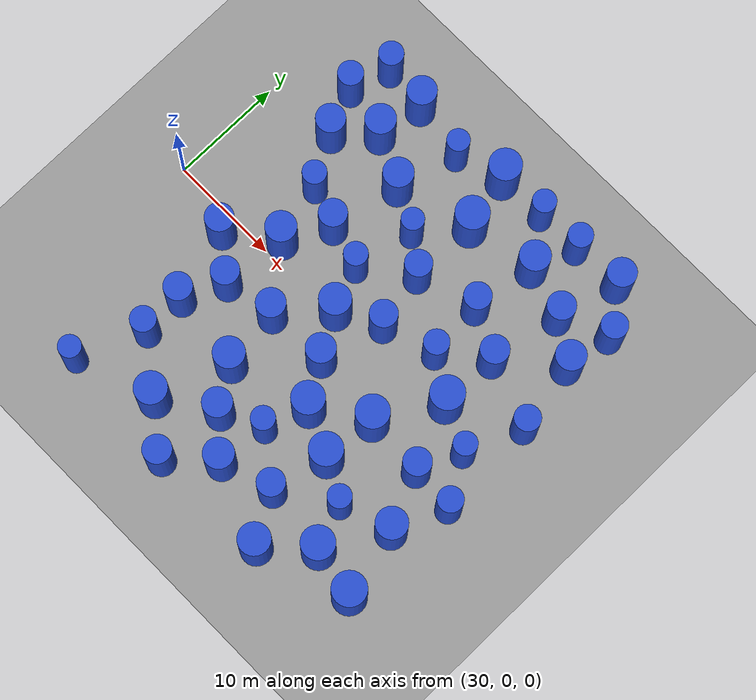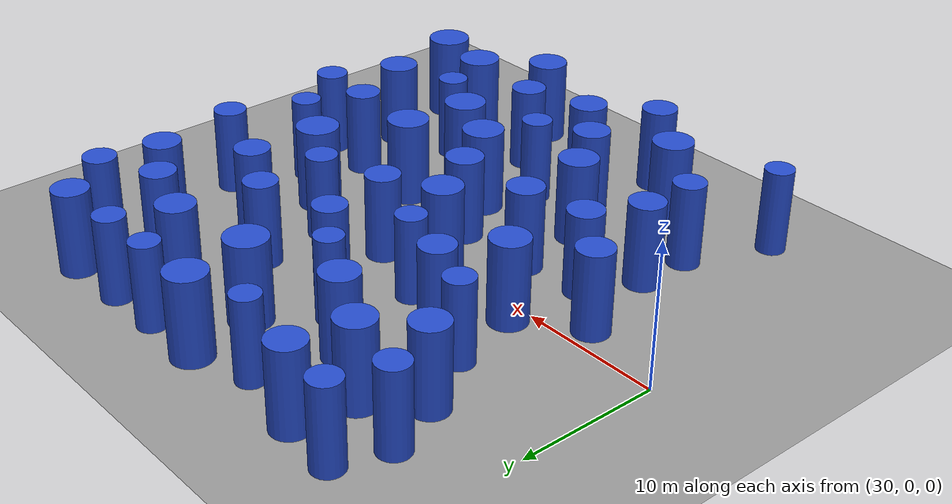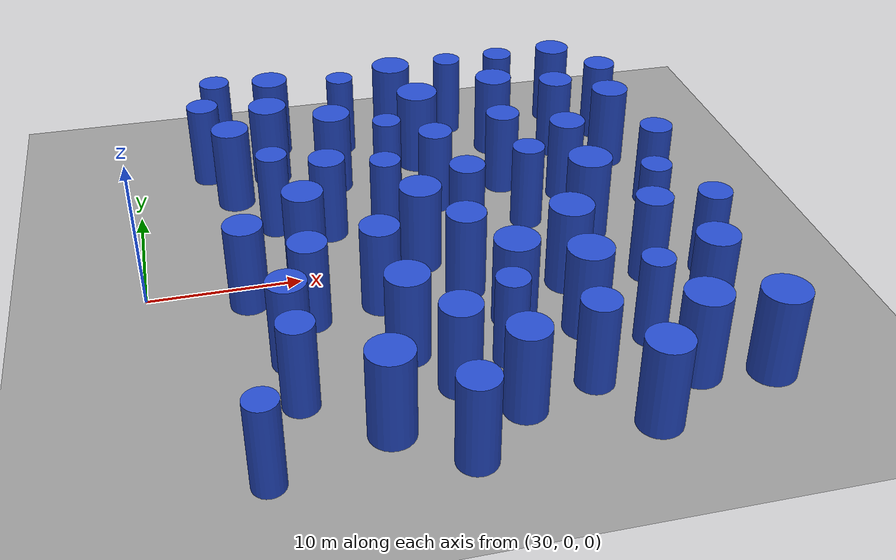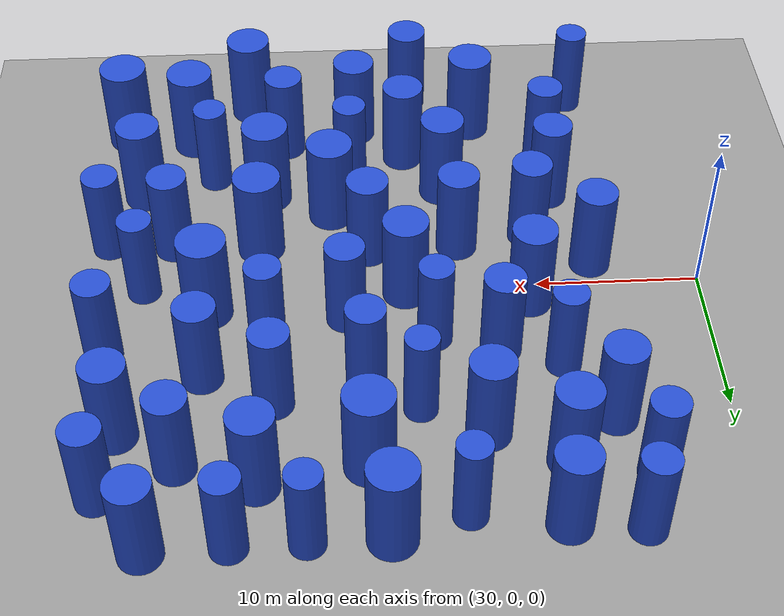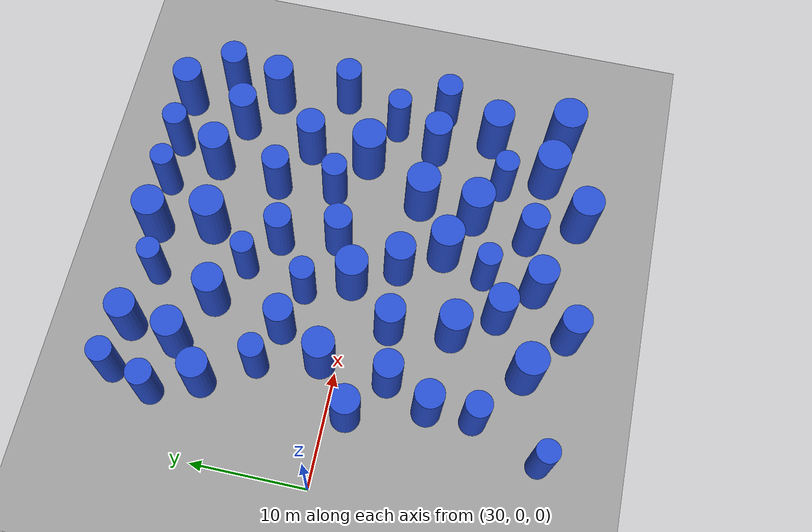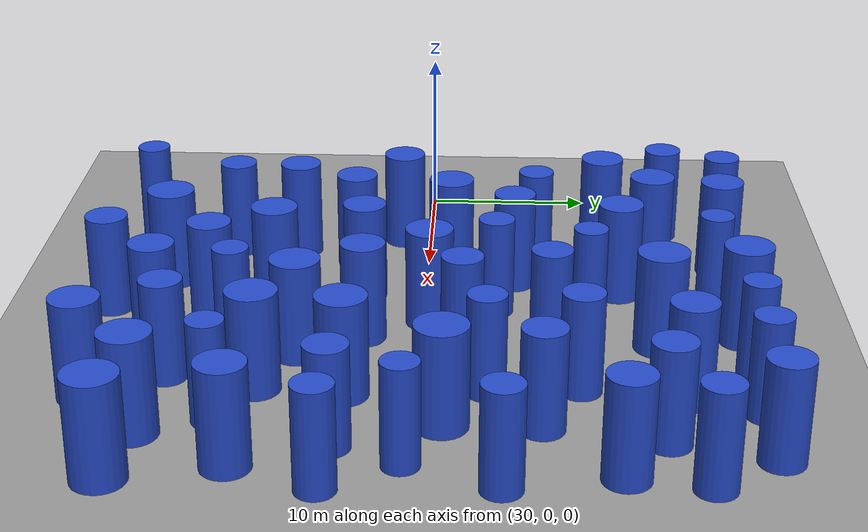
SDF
<sdf version="1.7">
 <world name="default">
  <model name="ground_plane_map">
   <static>1</static>
   <link name="link">
    <collision name="collision">
     <geometry><plane><normal>0 0 1</normal><size>110 50</size></plane></geometry>
     <surface>
      <contact><collide_without_contact>1</collide_without_contact></contact>
      <friction><ode><mu>100</mu><mu2>50</mu2></ode></friction>
     </surface>
    </collision>
    <visual name="visual">
     <cast_shadows>0</cast_shadows>
     <geometry><plane><normal>0 0 1</normal><size>110 50</size></plane></geometry>
     <material>
      <script><uri>file://media/materials/scripts/gazebo.material</uri><name>Gazebo/Grey</name></script>
     </material>
    </visual>
   </link>
   <pose>53 0 0 0 -0 0</pose>
  </model>
  <model name="0">
   <static>1</static>
   <link name="link">
    <inertial>
     <mass>2</mass>
     <inertia><ixx>6.95079</ixx><ixy>0</ixy><ixz>0</ixz><iyy>6.95079</iyy><iyz>0</iyz><izz>1.90158</izz></inertia>
    </inertial>
    <collision name="collision">
     <geometry><cylinder><length>6</length><radius>1.37898</radius></cylinder></geometry>
     <surface><contact><collide_without_contact>1</collide_without_contact></contact></surface>
    </collision>
    <visual name="visual">
     <geometry><cylinder><length>6</length><radius>1.37898</radius></cylinder></geometry>
     <material>
      <script><uri>file://media/materials/scripts/gazebo.material</uri><name>Gazebo/Blue</name></script>
     </material>
    </visual>
    <gravity>0</gravity>
   </link>
   <pose>45.2762 -8.97843 3 0 -0 0</pose>
  </model>
  <model name="3">
   <static>1</static>
   <link name="link">
    <inertial>
     <mass>2</mass>
     <inertia><ixx>6.94931</ixx><ixy>0</ixy><ixz>0</ixz><iyy>6.94931</iyy><iyz>0</iyz><izz>1.89861</izz></inertia>
    </inertial>
    <collision name="collision">
     <geometry><cylinder><length>6</length><radius>1.3779</radius></cylinder></geometry>
     <surface><contact><collide_without_contact>1</collide_without_contact></contact></surface>
    </collision>
    <visual name="visual">
     <geometry><cylinder><length>6</length><radius>1.3779</radius></cylinder></geometry>
     <material>
      <script><uri>file://media/materials/scripts/gazebo.material</uri><name>Gazebo/Blue</name></script>
     </material>
    </visual>
    <gravity>0</gravity>
   </link>
   <pose>64.5107 -9.29219 3 0 -0 0</pose>
  </model>
  <model name="6">
   <static>1</static>
   <link name="link">
    <inertial>
     <mass>2</mass>
     <inertia><ixx>6.55162</ixx><ixy>0</ixy><ixz>0</ixz><iyy>6.55162</iyy><iyz>0</iyz><izz>1.10324</izz></inertia>
    </inertial>
    <collision name="collision">
     <geometry><cylinder><length>6</length><radius>1.05035</radius></cylinder></geometry>
     <surface><contact><collide_without_contact>1</collide_without_contact></contact></surface>
    </collision>
    <visual name="visual">
     <geometry><cylinder><length>6</length><radius>1.05035</radius></cylinder></geometry>
     <material>
      <script><uri>file://media/materials/scripts/gazebo.material</uri><name>Gazebo/Blue</name></script>
     </material>
    </visual>
    <gravity>0</gravity>
   </link>
   <pose>46.5555 4.20254 3 0 -0 0</pose>
  </model>
  <model name="7">
   <static>1</static>
   <link name="link">
    <inertial>
     <mass>2</mass>
     <inertia><ixx>7.10009</ixx><ixy>0</ixy><ixz>0</ixz><iyy>7.10009</iyy><iyz>0</iyz><izz>2.20019</izz></inertia>
    </inertial>
    <collision name="collision">
     <geometry><cylinder><length>6</length><radius>1.4833</radius></cylinder></geometry>
     <surface><contact><collide_without_contact>1</collide_without_contact></contact></surface>
    </collision>
    <visual name="visual">
     <geometry><cylinder><length>6</length><radius>1.4833</radius></cylinder></geometry>
     <material>
      <script><uri>file://media/materials/scripts/gazebo.material</uri><name>Gazebo/Blue</name></script>
     </material>
    </visual>
    <gravity>0</gravity>
   </link>
   <pose>50.7692 13.5287 3 0 -0 0</pose>
  </model>
  <model name="8">
   <static>1</static>
   <link name="link">
    <inertial>
     <mass>2</mass>
     <inertia><ixx>6.98352</ixx><ixy>0</ixy><ixz>0</ixz><iyy>6.98352</iyy><iyz>0</iyz><izz>1.96705</izz></inertia>
    </inertial>
    <collision name="collision">
     <geometry><cylinder><length>6</length><radius>1.40251</radius></cylinder></geometry>
     <surface><contact><collide_without_contact>1</collide_without_contact></contact></surface>
    </collision>
    <visual name="visual">
     <geometry><cylinder><length>6</length><radius>1.40251</radius></cylinder></geometry>
     <material>
      <script><uri>file://media/materials/scripts/gazebo.material</uri><name>Gazebo/Blue</name></script>
     </material>
    </visual>
    <gravity>0</gravity>
   </link>
   <pose>57.7333 -18.0752 3 0 -0 0</pose>
  </model>
  <model name="15">
   <static>1</static>
   <link name="link">
    <inertial>
     <mass>2</mass>
     <inertia><ixx>6.74725</ixx><ixy>0</ixy><ixz>0</ixz><iyy>6.74725</iyy><iyz>0</iyz><izz>1.49449</izz></inertia>
    </inertial>
    <collision name="collision">
     <geometry><cylinder><length>6</length><radius>1.22249</radius></cylinder></geometry>
     <surface><contact><collide_without_contact>1</collide_without_contact></contact></surface>
    </collision>
    <visual name="visual">
     <geometry><cylinder><length>6</length><radius>1.22249</radius></cylinder></geometry>
     <material>
      <script><uri>file://media/materials/scripts/gazebo.material</uri><name>Gazebo/Blue</name></script>
     </material>
    </visual>
    <gravity>0</gravity>
   </link>
   <pose>62.3933 -4.32254 3 0 -0 0</pose>
  </model>
  <model name="17">
   <static>1</static>
   <link name="link">
    <inertial>
     <mass>2</mass>
     <inertia><ixx>6.88223</ixx><ixy>0</ixy><ixz>0</ixz><iyy>6.88223</iyy><iyz>0</iyz><izz>1.76446</izz></inertia>
    </inertial>
    <collision name="collision">
     <geometry><cylinder><length>6</length><radius>1.32833</radius></cylinder></geometry>
     <surface><contact><collide_without_contact>1</collide_without_contact></contact></surface>
    </collision>
    <visual name="visual">
     <geometry><cylinder><length>6</length><radius>1.32833</radius></cylinder></geometry>
     <material>
      <script><uri>file://media/materials/scripts/gazebo.material</uri><name>Gazebo/Blue</name></script>
     </material>
    </visual>
    <gravity>0</gravity>
   </link>
   <pose>50.7154 -15.3173 3 0 -0 0</pose>
  </model>
  <model name="19">
   <static>1</static>
   <link name="link">
    <inertial>
     <mass>2</mass>
     <inertia><ixx>7.06805</ixx><ixy>0</ixy><ixz>0</ixz><iyy>7.06805</iyy><iyz>0</iyz><izz>2.1361</izz></inertia>
    </inertial>
    <collision name="collision">
     <geometry><cylinder><length>6</length><radius>1.46154</radius></cylinder></geometry>
     <surface><contact><collide_without_contact>1</collide_without_contact></contact></surface>
    </collision>
    <visual name="visual">
     <geometry><cylinder><length>6</length><radius>1.46154</radius></cylinder></geometry>
     <material>
      <script><uri>file://media/materials/scripts/gazebo.material</uri><name>Gazebo/Blue</name></script>
     </material>
    </visual>
    <gravity>0</gravity>
   </link>
   <pose>56.9413 -4.03041 3 0 -0 0</pose>
  </model>
  <model name="21">
   <static>1</static>
   <link name="link">
    <inertial>
     <mass>2</mass>
     <inertia><ixx>6.54203</ixx><ixy>0</ixy><ixz>0</ixz><iyy>6.54203</iyy><iyz>0</iyz><izz>1.08407</izz></inertia>
    </inertial>
    <collision name="collision">
     <geometry><cylinder><length>6</length><radius>1.04119</radius></cylinder></geometry>
     <surface><contact><collide_without_contact>1</collide_without_contact></contact></surface>
    </collision>
    <visual name="visual">
     <geometry><cylinder><length>6</length><radius>1.04119</radius></cylinder></geometry>
     <material>
      <script><uri>file://media/materials/scripts/gazebo.material</uri><name>Gazebo/Blue</name></script>
     </material>
    </visual>
    <gravity>0</gravity>
   </link>
   <pose>64.0435 -0.514004 3 0 -0 0</pose>
  </model>
  <model name="26">
   <static>1</static>
   <link name="link">
    <inertial>
     <mass>2</mass>
     <inertia><ixx>6.84912</ixx><ixy>0</ixy><ixz>0</ixz><iyy>6.84912</iyy><iyz>0</iyz><izz>1.69825</izz></inertia>
    </inertial>
    <collision name="collision">
     <geometry><cylinder><length>6</length><radius>1.30317</radius></cylinder></geometry>
     <surface><contact><collide_without_contact>1</collide_without_contact></contact></surface>
    </collision>
    <visual name="visual">
     <geometry><cylinder><length>6</length><radius>1.30317</radius></cylinder></geometry>
     <material>
      <script><uri>file://media/materials/scripts/gazebo.material</uri><name>Gazebo/Blue</name></script>
     </material>
    </visual>
    <gravity>0</gravity>
   </link>
   <pose>40.3525 17.9683 3 0 -0 0</pose>
  </model>
  <model name="29">
   <static>1</static>
   <link name="link">
    <inertial>
     <mass>2</mass>
     <inertia><ixx>6.6384</ixx><ixy>0</ixy><ixz>0</ixz><iyy>6.6384</iyy><iyz>0</iyz><izz>1.27681</izz></inertia>
    </inertial>
    <collision name="collision">
     <geometry><cylinder><length>6</length><radius>1.12996</radius></cylinder></geometry>
     <surface><contact><collide_without_contact>1</collide_without_contact></contact></surface>
    </collision>
    <visual name="visual">
     <geometry><cylinder><length>6</length><radius>1.12996</radius></cylinder></geometry>
     <material>
      <script><uri>file://media/materials/scripts/gazebo.material</uri><name>Gazebo/Blue</name></script>
     </material>
    </visual>
    <gravity>0</gravity>
   </link>
   <pose>38.3677 -12.0648 3 0 -0 0</pose>
  </model>
  <model name="34">
   <static>1</static>
   <link name="link">
    <inertial>
     <mass>2</mass>
     <inertia><ixx>6.84292</ixx><ixy>0</ixy><ixz>0</ixz><iyy>6.84292</iyy><iyz>0</iyz><izz>1.68583</izz></inertia>
    </inertial>
    <collision name="collision">
     <geometry><cylinder><length>6</length><radius>1.2984</radius></cylinder></geometry>
     <surface><contact><collide_without_contact>1</collide_without_contact></contact></surface>
    </collision>
    <visual name="visual">
     <geometry><cylinder><length>6</length><radius>1.2984</radius></cylinder></geometry>
     <material>
      <script><uri>file://media/materials/scripts/gazebo.material</uri><name>Gazebo/Blue</name></script>
     </material>
    </visual>
    <gravity>0</gravity>
   </link>
   <pose>50.2362 -3.36983 3 0 -0 0</pose>
  </model>
  <model name="38">
   <static>1</static>
   <link name="link">
    <inertial>
     <mass>2</mass>
     <inertia><ixx>6.6543</ixx><ixy>0</ixy><ixz>0</ixz><iyy>6.6543</iyy><iyz>0</iyz><izz>1.3086</izz></inertia>
    </inertial>
    <collision name="collision">
     <geometry><cylinder><length>6</length><radius>1.14394</radius></cylinder></geometry>
     <surface><contact><collide_without_contact>1</collide_without_contact></contact></surface>
    </collision>
    <visual name="visual">
     <geometry><cylinder><length>6</length><radius>1.14394</radius></cylinder></geometry>
     <material>
      <script><uri>file://media/materials/scripts/gazebo.material</uri><name>Gazebo/Blue</name></script>
     </material>
    </visual>
    <gravity>0</gravity>
   </link>
   <pose>66.0688 4.56607 3 0 -0 0</pose>
  </model>
  <model name="40">
   <static>1</static>
   <link name="link">
    <inertial>
     <mass>2</mass>
     <inertia><ixx>6.62687</ixx><ixy>0</ixy><ixz>0</ixz><iyy>6.62687</iyy><iyz>0</iyz><izz>1.25375</izz></inertia>
    </inertial>
    <collision name="collision">
     <geometry><cylinder><length>6</length><radius>1.11971</radius></cylinder></geometry>
     <surface><contact><collide_without_contact>1</collide_without_contact></contact></surface>
    </collision>
    <visual name="visual">
     <geometry><cylinder><length>6</length><radius>1.11971</radius></cylinder></geometry>
     <material>
      <script><uri>file://media/materials/scripts/gazebo.material</uri><name>Gazebo/Blue</name></script>
     </material>
    </visual>
    <gravity>0</gravity>
   </link>
   <pose>66.4322 -4.58232 3 0 -0 0</pose>
  </model>
  <model name="41">
   <static>1</static>
   <link name="link">
    <inertial>
     <mass>2</mass>
     <inertia><ixx>6.82443</ixx><ixy>0</ixy><ixz>0</ixz><iyy>6.82443</iyy><iyz>0</iyz><izz>1.64885</izz></inertia>
    </inertial>
    <collision name="collision">
     <geometry><cylinder><length>6</length><radius>1.28408</radius></cylinder></geometry>
     <surface><contact><collide_without_contact>1</collide_without_contact></contact></surface>
    </collision>
    <visual name="visual">
     <geometry><cylinder><length>6</length><radius>1.28408</radius></cylinder></geometry>
     <material>
      <script><uri>file://media/materials/scripts/gazebo.material</uri><name>Gazebo/Blue</name></script>
     </material>
    </visual>
    <gravity>0</gravity>
   </link>
   <pose>44.6605 -3.65832 3 0 -0 0</pose>
  </model>
  <model name="42">
   <static>1</static>
   <link name="link">
    <inertial>
     <mass>2</mass>
     <inertia><ixx>6.73098</ixx><ixy>0</ixy><ixz>0</ixz><iyy>6.73098</iyy><iyz>0</iyz><izz>1.46195</izz></inertia>
    </inertial>
    <collision name="collision">
     <geometry><cylinder><length>6</length><radius>1.20911</radius></cylinder></geometry>
     <surface><contact><collide_without_contact>1</collide_without_contact></contact></surface>
    </collision>
    <visual name="visual">
     <geometry><cylinder><length>6</length><radius>1.20911</radius></cylinder></geometry>
     <material>
      <script><uri>file://media/materials/scripts/gazebo.material</uri><name>Gazebo/Blue</name></script>
     </material>
    </visual>
    <gravity>0</gravity>
   </link>
   <pose>51.7574 2.30771 3 0 -0 0</pose>
  </model>
  <model name="43">
   <static>1</static>
   <link name="link">
    <inertial>
     <mass>2</mass>
     <inertia><ixx>7.03959</ixx><ixy>0</ixy><ixz>0</ixz><iyy>7.03959</iyy><iyz>0</iyz><izz>2.07918</izz></inertia>
    </inertial>
    <collision name="collision">
     <geometry><cylinder><length>6</length><radius>1.44194</radius></cylinder></geometry>
     <surface><contact><collide_without_contact>1</collide_without_contact></contact></surface>
    </collision>
    <visual name="visual">
     <geometry><cylinder><length>6</length><radius>1.44194</radius></cylinder></geometry>
     <material>
      <script><uri>file://media/materials/scripts/gazebo.material</uri><name>Gazebo/Blue</name></script>
     </material>
    </visual>
    <gravity>0</gravity>
   </link>
   <pose>52.4739 -6.97567 3 0 -0 0</pose>
  </model>
  <model name="45">
   <static>1</static>
   <link name="link">
    <inertial>
     <mass>2</mass>
     <inertia><ixx>7.12457</ixx><ixy>0</ixy><ixz>0</ixz><iyy>7.12457</iyy><iyz>0</iyz><izz>2.24913</izz></inertia>
    </inertial>
    <collision name="collision">
     <geometry><cylinder><length>6</length><radius>1.49971</radius></cylinder></geometry>
     <surface><contact><collide_without_contact>1</collide_without_contact></contact></surface>
    </collision>
    <visual name="visual">
     <geometry><cylinder><length>6</length><radius>1.49971</radius></cylinder></geometry>
     <material>
      <script><uri>file://media/materials/scripts/gazebo.material</uri><name>Gazebo/Blue</name></script>
     </material>
    </visual>
    <gravity>0</gravity>
   </link>
   <pose>65.9097 -15.412 3 0 -0 0</pose>
  </model>
  <model name="48">
   <static>1</static>
   <link name="link">
    <inertial>
     <mass>2</mass>
     <inertia><ixx>7.01812</ixx><ixy>0</ixy><ixz>0</ixz><iyy>7.01812</iyy><iyz>0</iyz><izz>2.03624</izz></inertia>
    </inertial>
    <collision name="collision">
     <geometry><cylinder><length>6</length><radius>1.42697</radius></cylinder></geometry>
     <surface><contact><collide_without_contact>1</collide_without_contact></contact></surface>
    </collision>
    <visual name="visual">
     <geometry><cylinder><length>6</length><radius>1.42697</radius></cylinder></geometry>
     <material>
      <script><uri>file://media/materials/scripts/gazebo.material</uri><name>Gazebo/Blue</name></script>
     </material>
    </visual>
    <gravity>0</gravity>
   </link>
   <pose>42.9644 -15.5514 3 0 -0 0</pose>
  </model>
  <model name="52">
   <static>1</static>
   <link name="link">
    <inertial>
     <mass>2</mass>
     <inertia><ixx>6.91961</ixx><ixy>0</ixy><ixz>0</ixz><iyy>6.91961</iyy><iyz>0</iyz><izz>1.83922</izz></inertia>
    </inertial>
    <collision name="collision">
     <geometry><cylinder><length>6</length><radius>1.35618</radius></cylinder></geometry>
     <surface><contact><collide_without_contact>1</collide_without_contact></contact></surface>
    </collision>
    <visual name="visual">
     <geometry><cylinder><length>6</length><radius>1.35618</radius></cylinder></geometry>
     <material>
      <script><uri>file://media/materials/scripts/gazebo.material</uri><name>Gazebo/Blue</name></script>
     </material>
    </visual>
    <gravity>0</gravity>
   </link>
   <pose>40.5909 1.41427 3 0 -0 0</pose>
  </model>
  <model name="53">
   <static>1</static>
   <link name="link">
    <inertial>
     <mass>2</mass>
     <inertia><ixx>6.83665</ixx><ixy>0</ixy><ixz>0</ixz><iyy>6.83665</iyy><iyz>0</iyz><izz>1.6733</izz></inertia>
    </inertial>
    <collision name="collision">
     <geometry><cylinder><length>6</length><radius>1.29356</radius></cylinder></geometry>
     <surface><contact><collide_without_contact>1</collide_without_contact></contact></surface>
    </collision>
    <visual name="visual">
     <geometry><cylinder><length>6</length><radius>1.29356</radius></cylinder></geometry>
     <material>
      <script><uri>file://media/materials/scripts/gazebo.material</uri><name>Gazebo/Blue</name></script>
     </material>
    </visual>
    <gravity>0</gravity>
   </link>
   <pose>36.7718 10.8356 3 0 -0 0</pose>
  </model>
  <model name="67">
   <static>1</static>
   <link name="link">
    <inertial>
     <mass>2</mass>
     <inertia><ixx>6.78438</ixx><ixy>0</ixy><ixz>0</ixz><iyy>6.78438</iyy><iyz>0</iyz><izz>1.56876</izz></inertia>
    </inertial>
    <collision name="collision">
     <geometry><cylinder><length>6</length><radius>1.2525</radius></cylinder></geometry>
     <surface><contact><collide_without_contact>1</collide_without_contact></contact></surface>
    </collision>
    <visual name="visual">
     <geometry><cylinder><length>6</length><radius>1.2525</radius></cylinder></geometry>
     <material>
      <script><uri>file://media/materials/scripts/gazebo.material</uri><name>Gazebo/Blue</name></script>
     </material>
    </visual>
    <gravity>0</gravity>
   </link>
   <pose>60.2022 6.69553 3 0 -0 0</pose>
  </model>
  <model name="69">
   <static>1</static>
   <link name="link">
    <inertial>
     <mass>2</mass>
     <inertia><ixx>6.60836</ixx><ixy>0</ixy><ixz>0</ixz><iyy>6.60836</iyy><iyz>0</iyz><izz>1.21672</izz></inertia>
    </inertial>
    <collision name="collision">
     <geometry><cylinder><length>6</length><radius>1.10305</radius></cylinder></geometry>
     <surface><contact><collide_without_contact>1</collide_without_contact></contact></surface>
    </collision>
    <visual name="visual">
     <geometry><cylinder><length>6</length><radius>1.10305</radius></cylinder></geometry>
     <material>
      <script><uri>file://media/materials/scripts/gazebo.material</uri><name>Gazebo/Blue</name></script>
     </material>
    </visual>
    <gravity>0</gravity>
   </link>
   <pose>56.4635 3.72702 3 0 -0 0</pose>
  </model>
  <model name="70">
   <static>1</static>
   <link name="link">
    <inertial>
     <mass>2</mass>
     <inertia><ixx>6.77017</ixx><ixy>0</ixy><ixz>0</ixz><iyy>6.77017</iyy><iyz>0</iyz><izz>1.54035</izz></inertia>
    </inertial>
    <collision name="collision">
     <geometry><cylinder><length>6</length><radius>1.24111</radius></cylinder></geometry>
     <surface><contact><collide_without_contact>1</collide_without_contact></contact></surface>
    </collision>
    <visual name="visual">
     <geometry><cylinder><length>6</length><radius>1.24111</radius></cylinder></geometry>
     <material>
      <script><uri>file://media/materials/scripts/gazebo.material</uri><name>Gazebo/Blue</name></script>
     </material>
    </visual>
    <gravity>0</gravity>
   </link>
   <pose>61.4244 13.1806 3 0 -0 0</pose>
  </model>
  <model name="71">
   <static>1</static>
   <link name="link">
    <inertial>
     <mass>2</mass>
     <inertia><ixx>6.88245</ixx><ixy>0</ixy><ixz>0</ixz><iyy>6.88245</iyy><iyz>0</iyz><izz>1.76489</izz></inertia>
    </inertial>
    <collision name="collision">
     <geometry><cylinder><length>6</length><radius>1.32849</radius></cylinder></geometry>
     <surface><contact><collide_without_contact>1</collide_without_contact></contact></surface>
    </collision>
    <visual name="visual">
     <geometry><cylinder><length>6</length><radius>1.32849</radius></cylinder></geometry>
     <material>
      <script><uri>file://media/materials/scripts/gazebo.material</uri><name>Gazebo/Blue</name></script>
     </material>
    </visual>
    <gravity>0</gravity>
   </link>
   <pose>44.0516 11.5777 3 0 -0 0</pose>
  </model>
  <model name="72">
   <static>1</static>
   <link name="link">
    <inertial>
     <mass>2</mass>
     <inertia><ixx>6.87185</ixx><ixy>0</ixy><ixz>0</ixz><iyy>6.87185</iyy><iyz>0</iyz><izz>1.7437</izz></inertia>
    </inertial>
    <collision name="collision">
     <geometry><cylinder><length>6</length><radius>1.32049</radius></cylinder></geometry>
     <surface><contact><collide_without_contact>1</collide_without_contact></contact></surface>
    </collision>
    <visual name="visual">
     <geometry><cylinder><length>6</length><radius>1.32049</radius></cylinder></geometry>
     <material>
      <script><uri>file://media/materials/scripts/gazebo.material</uri><name>Gazebo/Blue</name></script>
     </material>
    </visual>
    <gravity>0</gravity>
   </link>
   <pose>64.8814 10.7806 3 0 -0 0</pose>
  </model>
  <model name="74">
   <static>1</static>
   <link name="link">
    <inertial>
     <mass>2</mass>
     <inertia><ixx>6.53838</ixx><ixy>0</ixy><ixz>0</ixz><iyy>6.53838</iyy><iyz>0</iyz><izz>1.07676</izz></inertia>
    </inertial>
    <collision name="collision">
     <geometry><cylinder><length>6</length><radius>1.03767</radius></cylinder></geometry>
     <surface><contact><collide_without_contact>1</collide_without_contact></contact></surface>
    </collision>
    <visual name="visual">
     <geometry><cylinder><length>6</length><radius>1.03767</radius></cylinder></geometry>
     <material>
      <script><uri>file://media/materials/scripts/gazebo.material</uri><name>Gazebo/Blue</name></script>
     </material>
    </visual>
    <gravity>0</gravity>
   </link>
   <pose>60.0307 -10.7714 3 0 -0 0</pose>
  </model>
  <model name="91">
   <static>1</static>
   <link name="link">
    <inertial>
     <mass>2</mass>
     <inertia><ixx>6.70318</ixx><ixy>0</ixy><ixz>0</ixz><iyy>6.70318</iyy><iyz>0</iyz><izz>1.40636</izz></inertia>
    </inertial>
    <collision name="collision">
     <geometry><cylinder><length>6</length><radius>1.1859</radius></cylinder></geometry>
     <surface><contact><collide_without_contact>1</collide_without_contact></contact></surface>
    </collision>
    <visual name="visual">
     <geometry><cylinder><length>6</length><radius>1.1859</radius></cylinder></geometry>
     <material>
      <script><uri>file://media/materials/scripts/gazebo.material</uri><name>Gazebo/Blue</name></script>
     </material>
    </visual>
    <gravity>0</gravity>
   </link>
   <pose>50.7268 7.32604 3 0 -0 0</pose>
  </model>
  <model name="93">
   <static>1</static>
   <link name="link">
    <inertial>
     <mass>2</mass>
     <inertia><ixx>6.74132</ixx><ixy>0</ixy><ixz>0</ixz><iyy>6.74132</iyy><iyz>0</iyz><izz>1.48264</izz></inertia>
    </inertial>
    <collision name="collision">
     <geometry><cylinder><length>6</length><radius>1.21764</radius></cylinder></geometry>
     <surface><contact><collide_without_contact>1</collide_without_contact></contact></surface>
    </collision>
    <visual name="visual">
     <geometry><cylinder><length>6</length><radius>1.21764</radius></cylinder></geometry>
     <material>
      <script><uri>file://media/materials/scripts/gazebo.material</uri><name>Gazebo/Blue</name></script>
     </material>
    </visual>
    <gravity>0</gravity>
   </link>
   <pose>55.3573 -13.9281 3 0 -0 0</pose>
  </model>
  <model name="95">
   <static>1</static>
   <link name="link">
    <inertial>
     <mass>2</mass>
     <inertia><ixx>6.50194</ixx><ixy>0</ixy><ixz>0</ixz><iyy>6.50194</iyy><iyz>0</iyz><izz>1.00388</izz></inertia>
    </inertial>
    <collision name="collision">
     <geometry><cylinder><length>6</length><radius>1.00194</radius></cylinder></geometry>
     <surface><contact><collide_without_contact>1</collide_without_contact></contact></surface>
    </collision>
    <visual name="visual">
     <geometry><cylinder><length>6</length><radius>1.00194</radius></cylinder></geometry>
     <material>
      <script><uri>file://media/materials/scripts/gazebo.material</uri><name>Gazebo/Blue</name></script>
     </material>
    </visual>
    <gravity>0</gravity>
   </link>
   <pose>35.8647 -17.9027 3 0 -0 0</pose>
  </model>
  <model name="98">
   <static>1</static>
   <link name="link">
    <inertial>
     <mass>2</mass>
     <inertia><ixx>7.06524</ixx><ixy>0</ixy><ixz>0</ixz><iyy>7.06524</iyy><iyz>0</iyz><izz>2.13048</izz></inertia>
    </inertial>
    <collision name="collision">
     <geometry><cylinder><length>6</length><radius>1.45962</radius></cylinder></geometry>
     <surface><contact><collide_without_contact>1</collide_without_contact></contact></surface>
    </collision>
    <visual name="visual">
     <geometry><cylinder><length>6</length><radius>1.45962</radius></cylinder></geometry>
     <material>
      <script><uri>file://media/materials/scripts/gazebo.material</uri><name>Gazebo/Blue</name></script>
     </material>
    </visual>
    <gravity>0</gravity>
   </link>
   <pose>56.5109 -8.86275 3 0 -0 0</pose>
  </model>
  <model name="99">
   <static>1</static>
   <link name="link">
    <inertial>
     <mass>2</mass>
     <inertia><ixx>6.56113</ixx><ixy>0</ixy><ixz>0</ixz><iyy>6.56113</iyy><iyz>0</iyz><izz>1.12225</izz></inertia>
    </inertial>
    <collision name="collision">
     <geometry><cylinder><length>6</length><radius>1.05937</radius></cylinder></geometry>
     <surface><contact><collide_without_contact>1</collide_without_contact></contact></surface>
    </collision>
    <visual name="visual">
     <geometry><cylinder><length>6</length><radius>1.05937</radius></cylinder></geometry>
     <material>
      <script><uri>file://media/materials/scripts/gazebo.material</uri><name>Gazebo/Blue</name></script>
     </material>
    </visual>
    <gravity>0</gravity>
   </link>
   <pose>39.1894 6.62476 3 0 -0 0</pose>
  </model>
  <model name="102">
   <static>1</static>
   <link name="link">
    <inertial>
     <mass>2</mass>
     <inertia><ixx>6.67738</ixx><ixy>0</ixy><ixz>0</ixz><iyy>6.67738</iyy><iyz>0</iyz><izz>1.35476</izz></inertia>
    </inertial>
    <collision name="collision">
     <geometry><cylinder><length>6</length><radius>1.16394</radius></cylinder></geometry>
     <surface><contact><collide_without_contact>1</collide_without_contact></contact></surface>
    </collision>
    <visual name="visual">
     <geometry><cylinder><length>6</length><radius>1.16394</radius></cylinder></geometry>
     <material>
      <script><uri>file://media/materials/scripts/gazebo.material</uri><name>Gazebo/Blue</name></script>
     </material>
    </visual>
    <gravity>0</gravity>
   </link>
   <pose>65.5987 15.0994 3 0 -0 0</pose>
  </model>
  <model name="109">
   <static>1</static>
   <link name="link">
    <inertial>
     <mass>2</mass>
     <inertia><ixx>6.59238</ixx><ixy>0</ixy><ixz>0</ixz><iyy>6.59238</iyy><iyz>0</iyz><izz>1.18476</izz></inertia>
    </inertial>
    <collision name="collision">
     <geometry><cylinder><length>6</length><radius>1.08847</radius></cylinder></geometry>
     <surface><contact><collide_without_contact>1</collide_without_contact></contact></surface>
    </collision>
    <visual name="visual">
     <geometry><cylinder><length>6</length><radius>1.08847</radius></cylinder></geometry>
     <material>
      <script><uri>file://media/materials/scripts/gazebo.material</uri><name>Gazebo/Blue</name></script>
     </material>
    </visual>
    <gravity>0</gravity>
   </link>
   <pose>36.254 18.4121 3 0 -0 0</pose>
  </model>
  <model name="110">
   <static>1</static>
   <link name="link">
    <inertial>
     <mass>2</mass>
     <inertia><ixx>6.70964</ixx><ixy>0</ixy><ixz>0</ixz><iyy>6.70964</iyy><iyz>0</iyz><izz>1.41928</izz></inertia>
    </inertial>
    <collision name="collision">
     <geometry><cylinder><length>6</length><radius>1.19133</radius></cylinder></geometry>
     <surface><contact><collide_without_contact>1</collide_without_contact></contact></surface>
    </collision>
    <visual name="visual">
     <geometry><cylinder><length>6</length><radius>1.19133</radius></cylinder></geometry>
     <material>
      <script><uri>file://media/materials/scripts/gazebo.material</uri><name>Gazebo/Blue</name></script>
     </material>
    </visual>
    <gravity>0</gravity>
   </link>
   <pose>56.059 8.86403 3 0 -0 0</pose>
  </model>
  <model name="113">
   <static>1</static>
   <link name="link">
    <inertial>
     <mass>2</mass>
     <inertia><ixx>6.50051</ixx><ixy>0</ixy><ixz>0</ixz><iyy>6.50051</iyy><iyz>0</iyz><izz>1.00101</izz></inertia>
    </inertial>
    <collision name="collision">
     <geometry><cylinder><length>6</length><radius>1.00051</radius></cylinder></geometry>
     <surface><contact><collide_without_contact>1</collide_without_contact></contact></surface>
    </collision>
    <visual name="visual">
     <geometry><cylinder><length>6</length><radius>1.00051</radius></cylinder></geometry>
     <material>
      <script><uri>file://media/materials/scripts/gazebo.material</uri><name>Gazebo/Blue</name></script>
     </material>
    </visual>
    <gravity>0</gravity>
   </link>
   <pose>45.5402 17.0915 3 0 -0 0</pose>
  </model>
  <model name="114">
   <static>1</static>
   <link name="link">
    <inertial>
     <mass>2</mass>
     <inertia><ixx>6.58854</ixx><ixy>0</ixy><ixz>0</ixz><iyy>6.58854</iyy><iyz>0</iyz><izz>1.17707</izz></inertia>
    </inertial>
    <collision name="collision">
     <geometry><cylinder><length>6</length><radius>1.08493</radius></cylinder></geometry>
     <surface><contact><collide_without_contact>1</collide_without_contact></contact></surface>
    </collision>
    <visual name="visual">
     <geometry><cylinder><length>6</length><radius>1.08493</radius></cylinder></geometry>
     <material>
      <script><uri>file://media/materials/scripts/gazebo.material</uri><name>Gazebo/Blue</name></script>
     </material>
    </visual>
    <gravity>0</gravity>
   </link>
   <pose>58.3376 18.5402 3 0 -0 0</pose>
  </model>
  <model name="115">
   <static>1</static>
   <link name="link">
    <inertial>
     <mass>2</mass>
     <inertia><ixx>6.96785</ixx><ixy>0</ixy><ixz>0</ixz><iyy>6.96785</iyy><iyz>0</iyz><izz>1.9357</izz></inertia>
    </inertial>
    <collision name="collision">
     <geometry><cylinder><length>6</length><radius>1.3913</radius></cylinder></geometry>
     <surface><contact><collide_without_contact>1</collide_without_contact></contact></surface>
    </collision>
    <visual name="visual">
     <geometry><cylinder><length>6</length><radius>1.3913</radius></cylinder></geometry>
     <material>
      <script><uri>file://media/materials/scripts/gazebo.material</uri><name>Gazebo/Blue</name></script>
     </material>
    </visual>
    <gravity>0</gravity>
   </link>
   <pose>48.1055 0.331199 3 0 -0 0</pose>
  </model>
  <model name="117">
   <static>1</static>
   <link name="link">
    <inertial>
     <mass>2</mass>
     <inertia><ixx>6.53646</ixx><ixy>0</ixy><ixz>0</ixz><iyy>6.53646</iyy><iyz>0</iyz><izz>1.07293</izz></inertia>
    </inertial>
    <collision name="collision">
     <geometry><cylinder><length>6</length><radius>1.03582</radius></cylinder></geometry>
     <surface><contact><collide_without_contact>1</collide_without_contact></contact></surface>
    </collision>
    <visual name="visual">
     <geometry><cylinder><length>6</length><radius>1.03582</radius></cylinder></geometry>
     <material>
      <script><uri>file://media/materials/scripts/gazebo.material</uri><name>Gazebo/Blue</name></script>
     </material>
    </visual>
    <gravity>0</gravity>
   </link>
   <pose>54.2143 18.4805 3 0 -0 0</pose>
  </model>
  <model name="126">
   <static>1</static>
   <link name="link">
    <inertial>
     <mass>2</mass>
     <inertia><ixx>6.77523</ixx><ixy>0</ixy><ixz>0</ixz><iyy>6.77523</iyy><iyz>0</iyz><izz>1.55045</izz></inertia>
    </inertial>
    <collision name="collision">
     <geometry><cylinder><length>6</length><radius>1.24517</radius></cylinder></geometry>
     <surface><contact><collide_without_contact>1</collide_without_contact></contact></surface>
    </collision>
    <visual name="visual">
     <geometry><cylinder><length>6</length><radius>1.24517</radius></cylinder></geometry>
     <material>
      <script><uri>file://media/materials/scripts/gazebo.material</uri><name>Gazebo/Blue</name></script>
     </material>
    </visual>
    <gravity>0</gravity>
   </link>
   <pose>40.0799 -4.45756 3 0 -0 0</pose>
  </model>
  <model name="127">
   <static>1</static>
   <link name="link">
    <inertial>
     <mass>2</mass>
     <inertia><ixx>6.62252</ixx><ixy>0</ixy><ixz>0</ixz><iyy>6.62252</iyy><iyz>0</iyz><izz>1.24504</izz></inertia>
    </inertial>
    <collision name="collision">
     <geometry><cylinder><length>6</length><radius>1.11581</radius></cylinder></geometry>
     <surface><contact><collide_without_contact>1</collide_without_contact></contact></surface>
    </collision>
    <visual name="visual">
     <geometry><cylinder><length>6</length><radius>1.11581</radius></cylinder></geometry>
     <material>
      <script><uri>file://media/materials/scripts/gazebo.material</uri><name>Gazebo/Blue</name></script>
     </material>
    </visual>
    <gravity>0</gravity>
   </link>
   <pose>35.1226 14.7666 3 0 -0 0</pose>
  </model>
  <model name="129">
   <static>1</static>
   <link name="link">
    <inertial>
     <mass>2</mass>
     <inertia><ixx>6.90609</ixx><ixy>0</ixy><ixz>0</ixz><iyy>6.90609</iyy><iyz>0</iyz><izz>1.81219</izz></inertia>
    </inertial>
    <collision name="collision">
     <geometry><cylinder><length>6</length><radius>1.34618</radius></cylinder></geometry>
     <surface><contact><collide_without_contact>1</collide_without_contact></contact></surface>
    </collision>
    <visual name="visual">
     <geometry><cylinder><length>6</length><radius>1.34618</radius></cylinder></geometry>
     <material>
      <script><uri>file://media/materials/scripts/gazebo.material</uri><name>Gazebo/Blue</name></script>
     </material>
    </visual>
    <gravity>0</gravity>
   </link>
   <pose>56.9503 14.6292 3 0 -0 0</pose>
  </model>
  <model name="135">
   <static>1</static>
   <link name="link">
    <inertial>
     <mass>2</mass>
     <inertia><ixx>6.76869</ixx><ixy>0</ixy><ixz>0</ixz><iyy>6.76869</iyy><iyz>0</iyz><izz>1.53738</izz></inertia>
    </inertial>
    <collision name="collision">
     <geometry><cylinder><length>6</length><radius>1.23991</radius></cylinder></geometry>
     <surface><contact><collide_without_contact>1</collide_without_contact></contact></surface>
    </collision>
    <visual name="visual">
     <geometry><cylinder><length>6</length><radius>1.23991</radius></cylinder></geometry>
     <material>
      <script><uri>file://media/materials/scripts/gazebo.material</uri><name>Gazebo/Blue</name></script>
     </material>
    </visual>
    <gravity>0</gravity>
   </link>
   <pose>42.7504 5.29137 3 0 -0 0</pose>
  </model>
  <model name="137">
   <static>1</static>
   <link name="link">
    <inertial>
     <mass>2</mass>
     <inertia><ixx>6.84017</ixx><ixy>0</ixy><ixz>0</ixz><iyy>6.84017</iyy><iyz>0</iyz><izz>1.68033</izz></inertia>
    </inertial>
    <collision name="collision">
     <geometry><cylinder><length>6</length><radius>1.29628</radius></cylinder></geometry>
     <surface><contact><collide_without_contact>1</collide_without_contact></contact></surface>
    </collision>
    <visual name="visual">
     <geometry><cylinder><length>6</length><radius>1.29628</radius></cylinder></geometry>
     <material>
      <script><uri>file://media/materials/scripts/gazebo.material</uri><name>Gazebo/Blue</name></script>
     </material>
    </visual>
    <gravity>0</gravity>
   </link>
   <pose>47.6007 -12.5047 3 0 -0 0</pose>
  </model>
  <model name="140">
   <static>1</static>
   <link name="link">
    <inertial>
     <mass>2</mass>
     <inertia><ixx>7.11754</ixx><ixy>0</ixy><ixz>0</ixz><iyy>7.11754</iyy><iyz>0</iyz><izz>2.23507</izz></inertia>
    </inertial>
    <collision name="collision">
     <geometry><cylinder><length>6</length><radius>1.49502</radius></cylinder></geometry>
     <surface><contact><collide_without_contact>1</collide_without_contact></contact></surface>
    </collision>
    <visual name="visual">
     <geometry><cylinder><length>6</length><radius>1.49502</radius></cylinder></geometry>
     <material>
      <script><uri>file://media/materials/scripts/gazebo.material</uri><name>Gazebo/Blue</name></script>
     </material>
    </visual>
    <gravity>0</gravity>
   </link>
   <pose>60.0713 1.40366 3 0 -0 0</pose>
  </model>
  <model name="142">
   <static>1</static>
   <link name="link">
    <inertial>
     <mass>2</mass>
     <inertia><ixx>7.06809</ixx><ixy>0</ixy><ixz>0</ixz><iyy>7.06809</iyy><iyz>0</iyz><izz>2.13618</izz></inertia>
    </inertial>
    <collision name="collision">
     <geometry><cylinder><length>6</length><radius>1.46157</radius></cylinder></geometry>
     <surface><contact><collide_without_contact>1</collide_without_contact></contact></surface>
    </collision>
    <visual name="visual">
     <geometry><cylinder><length>6</length><radius>1.46157</radius></cylinder></geometry>
     <material>
      <script><uri>file://media/materials/scripts/gazebo.material</uri><name>Gazebo/Blue</name></script>
     </material>
    </visual>
    <gravity>0</gravity>
   </link>
   <pose>61.5116 -14.6325 3 0 -0 0</pose>
  </model>
  <model name="145">
   <static>1</static>
   <link name="link">
    <inertial>
     <mass>2</mass>
     <inertia><ixx>7.01587</ixx><ixy>0</ixy><ixz>0</ixz><iyy>7.01587</iyy><iyz>0</iyz><izz>2.03175</izz></inertia>
    </inertial>
    <collision name="collision">
     <geometry><cylinder><length>6</length><radius>1.42539</radius></cylinder></geometry>
     <surface><contact><collide_without_contact>1</collide_without_contact></contact></surface>
    </collision>
    <visual name="visual">
     <geometry><cylinder><length>6</length><radius>1.42539</radius></cylinder></geometry>
     <material>
      <script><uri>file://media/materials/scripts/gazebo.material</uri><name>Gazebo/Blue</name></script>
     </material>
    </visual>
    <gravity>0</gravity>
   </link>
   <pose>49.7543 18.3986 3 0 -0 0</pose>
  </model>
  <model name="146">
   <static>1</static>
   <link name="link">
    <inertial>
     <mass>2</mass>
     <inertia><ixx>6.77214</ixx><ixy>0</ixy><ixz>0</ixz><iyy>6.77214</iyy><iyz>0</iyz><izz>1.54429</izz></inertia>
    </inertial>
    <collision name="collision">
     <geometry><cylinder><length>6</length><radius>1.24269</radius></cylinder></geometry>
     <surface><contact><collide_without_contact>1</collide_without_contact></contact></surface>
    </collision>
    <visual name="visual">
     <geometry><cylinder><length>6</length><radius>1.24269</radius></cylinder></geometry>
     <material>
      <script><uri>file://media/materials/scripts/gazebo.material</uri><name>Gazebo/Blue</name></script>
     </material>
    </visual>
    <gravity>0</gravity>
   </link>
   <pose>38.3567 -8.13907 3 0 -0 0</pose>
  </model>
  <model name="148">
   <static>1</static>
   <link name="link">
    <inertial>
     <mass>2</mass>
     <inertia><ixx>6.77898</ixx><ixy>0</ixy><ixz>0</ixz><iyy>6.77898</iyy><iyz>0</iyz><izz>1.55796</izz></inertia>
    </inertial>
    <collision name="collision">
     <geometry><cylinder><length>6</length><radius>1.24818</radius></cylinder></geometry>
     <surface><contact><collide_without_contact>1</collide_without_contact></contact></surface>
    </collision>
    <visual name="visual">
     <geometry><cylinder><length>6</length><radius>1.24818</radius></cylinder></geometry>
     <material>
      <script><uri>file://media/materials/scripts/gazebo.material</uri><name>Gazebo/Blue</name></script>
     </material>
    </visual>
    <gravity>0</gravity>
   </link>
   <pose>47.0139 -18.6386 3 0 -0 0</pose>
  </model>
  <model name="149">
   <static>1</static>
   <link name="link">
    <inertial>
     <mass>2</mass>
     <inertia><ixx>6.91213</ixx><ixy>0</ixy><ixz>0</ixz><iyy>6.91213</iyy><iyz>0</iyz><izz>1.82425</izz></inertia>
    </inertial>
    <collision name="collision">
     <geometry><cylinder><length>6</length><radius>1.35065</radius></cylinder></geometry>
     <surface><contact><collide_without_contact>1</collide_without_contact></contact></surface>
    </collision>
    <visual name="visual">
     <geometry><cylinder><length>6</length><radius>1.35065</radius></cylinder></geometry>
     <material>
      <script><uri>file://media/materials/scripts/gazebo.material</uri><name>Gazebo/Blue</name></script>
     </material>
    </visual>
    <gravity>0</gravity>
   </link>
   <pose>39.7193 13.7583 3 0 -0 0</pose>
  </model>
  <model name="152">
   <static>1</static>
   <link name="link">
    <inertial>
     <mass>2</mass>
     <inertia><ixx>6.80031</ixx><ixy>0</ixy><ixz>0</ixz><iyy>6.80031</iyy><iyz>0</iyz><izz>1.60063</izz></inertia>
    </inertial>
    <collision name="collision">
     <geometry><cylinder><length>6</length><radius>1.26516</radius></cylinder></geometry>
     <surface><contact><collide_without_contact>1</collide_without_contact></contact></surface>
    </collision>
    <visual name="visual">
     <geometry><cylinder><length>6</length><radius>1.26516</radius></cylinder></geometry>
     <material>
      <script><uri>file://media/materials/scripts/gazebo.material</uri><name>Gazebo/Blue</name></script>
     </material>
    </visual>
    <gravity>0</gravity>
   </link>
   <pose>36.4831 -1.67931 3 0 -0 0</pose>
  </model>
  <model name="155">
   <static>1</static>
   <link name="link">
    <inertial>
     <mass>2</mass>
     <inertia><ixx>6.55081</ixx><ixy>0</ixy><ixz>0</ixz><iyy>6.55081</iyy><iyz>0</iyz><izz>1.10162</izz></inertia>
    </inertial>
    <collision name="collision">
     <geometry><cylinder><length>6</length><radius>1.04958</radius></cylinder></geometry>
     <surface><contact><collide_without_contact>1</collide_without_contact></contact></surface>
    </collision>
    <visual name="visual">
     <geometry><cylinder><length>6</length><radius>1.04958</radius></cylinder></geometry>
     <material>
      <script><uri>file://media/materials/scripts/gazebo.material</uri><name>Gazebo/Blue</name></script>
     </material>
    </visual>
    <gravity>0</gravity>
   </link>
   <pose>51.1308 -10.7515 3 0 -0 0</pose>
  </model>
  <model name="159">
   <static>1</static>
   <link name="link">
    <inertial>
     <mass>2</mass>
     <inertia><ixx>6.5</ixx><ixy>0</ixy><ixz>0</ixz><iyy>6.5</iyy><iyz>0</iyz><izz>1</izz></inertia>
    </inertial>
    <collision name="collision">
     <geometry><cylinder><length>6</length><radius>1</radius></cylinder></geometry>
     <surface><contact><collide_without_contact>1</collide_without_contact></contact></surface>
    </collision>
    <visual name="visual">
     <geometry><cylinder><length>6</length><radius>1</radius></cylinder></geometry>
     <material>
      <script><uri>file://media/materials/scripts/gazebo.material</uri><name>Gazebo/Blue</name></script>
     </material>
    </visual>
    <gravity>0</gravity>
   </link>
   <pose>47.719 9.62751 3 0 -0 0</pose>
  </model>
  <model name="160">
   <static>1</static>
   <link name="link">
    <inertial>
     <mass>2</mass>
     <inertia><ixx>6.81384</ixx><ixy>0</ixy><ixz>0</ixz><iyy>6.81384</iyy><iyz>0</iyz><izz>1.62768</izz></inertia>
    </inertial>
    <collision name="collision">
     <geometry><cylinder><length>6</length><radius>1.2758</radius></cylinder></geometry>
     <surface><contact><collide_without_contact>1</collide_without_contact></contact></surface>
    </collision>
    <visual name="visual">
     <geometry><cylinder><length>6</length><radius>1.2758</radius></cylinder></geometry>
     <material>
      <script><uri>file://media/materials/scripts/gazebo.material</uri><name>Gazebo/Blue</name></script>
     </material>
    </visual>
    <gravity>0</gravity>
   </link>
   <pose>62.911 18.7158 3 0 -0 0</pose>
  </model>
 </world>
</sdf>
